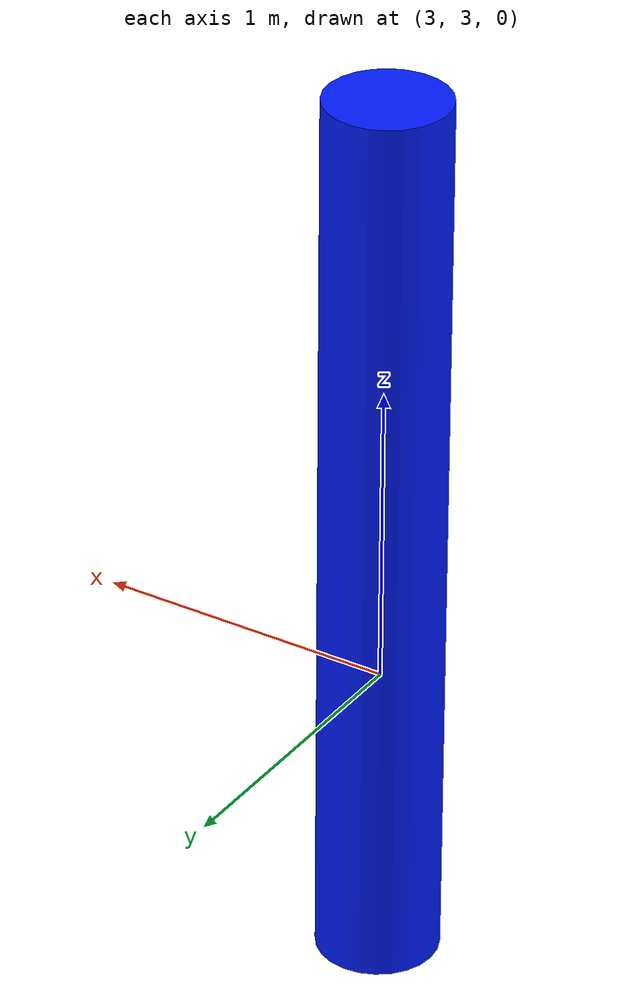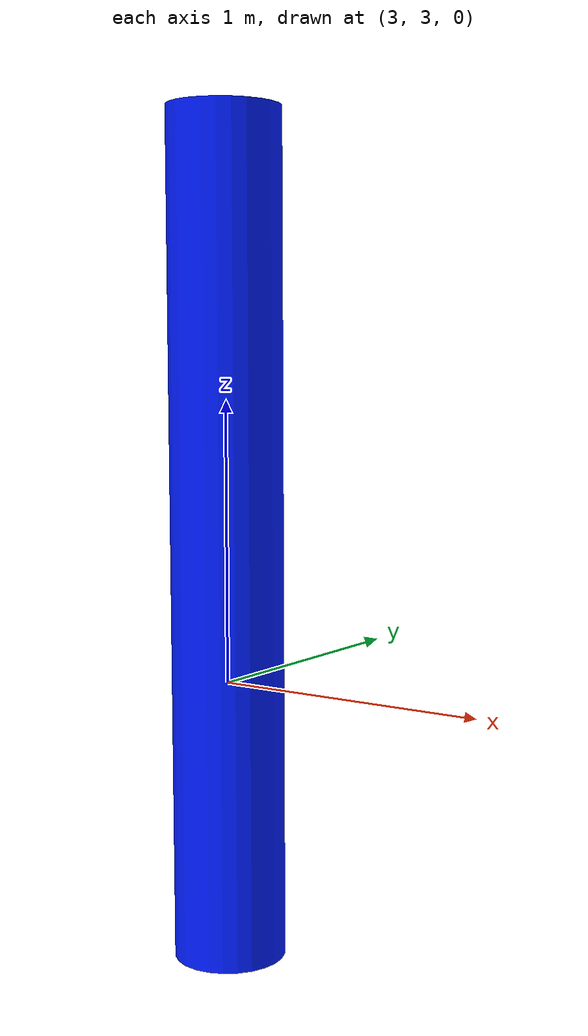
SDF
<sdf version='1.6'>
    <model name='cylinder1'>
      <pose>3 3 0.5 0 -0 0</pose>
      <link name='cylinder_link'>
        <inertial>
          <inertia>
            <ixx>0.14580000000000001</ixx>
            <ixy>0</ixy>
            <ixz>0</ixz>
            <iyy>0.14580000000000001</iyy>
            <iyz>0</iyz>
            <izz>0.125</izz>
          </inertia>
          <mass>1</mass>
          <pose>0 0 0 0 -0 0</pose>
        </inertial>
        <collision name='cylinder_collision'>
          <geometry>
            <cylinder>
              <radius>0.5</radius>
              <length>1</length>
            </cylinder>
          </geometry>
          <surface>
            <friction>
              <ode/>
            </friction>
            <bounce/>
            <contact/>
          </surface>
        </collision>
        <visual name='cylinder_visual'>
          <geometry>
            <cylinder>
              <radius>0.2</radius>
              <length>3</length>
            </cylinder>
          </geometry>
          <material>
            <ambient>0 0.1 1 1</ambient>
            <diffuse>0 0.11 1 1</diffuse>
            <specular>0 0.11 1 1</specular>
          </material>
        </visual>
        <pose>0 0 0 0 -0 0</pose>
        <enable_wind>false</enable_wind>
      </link>
      <static>false</static>
      <self_collide>false</self_collide>
    </model>
    </sdf>
